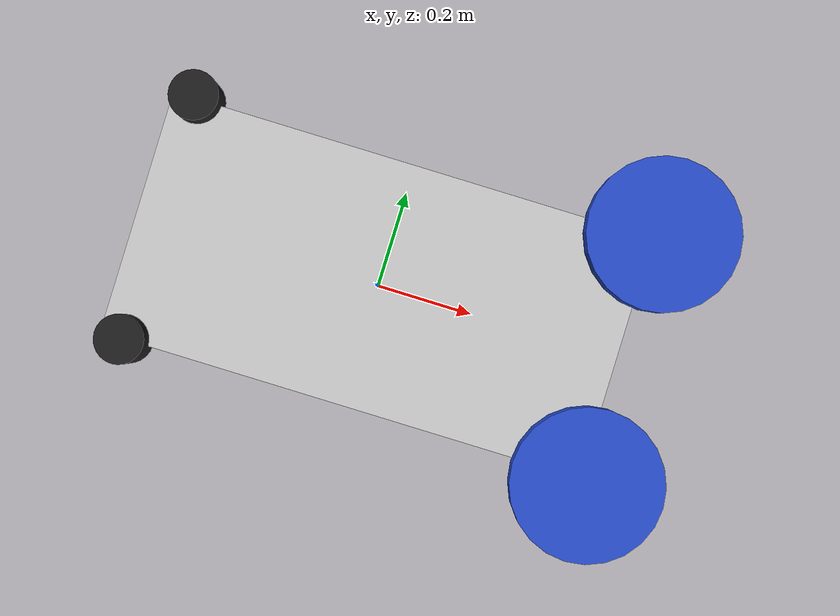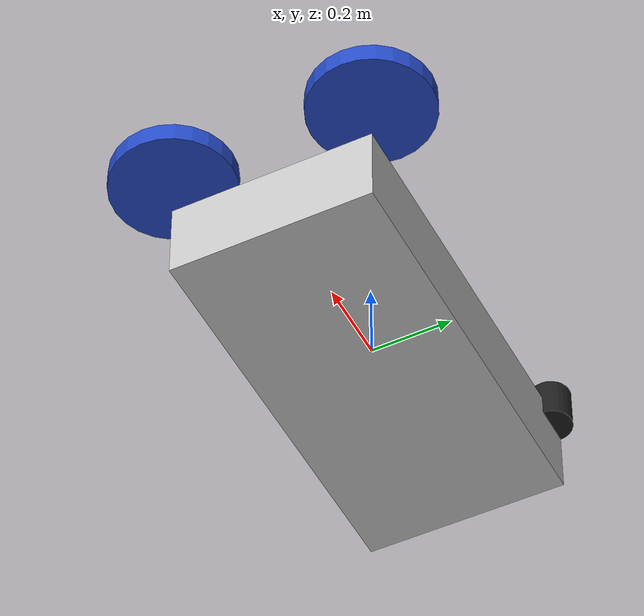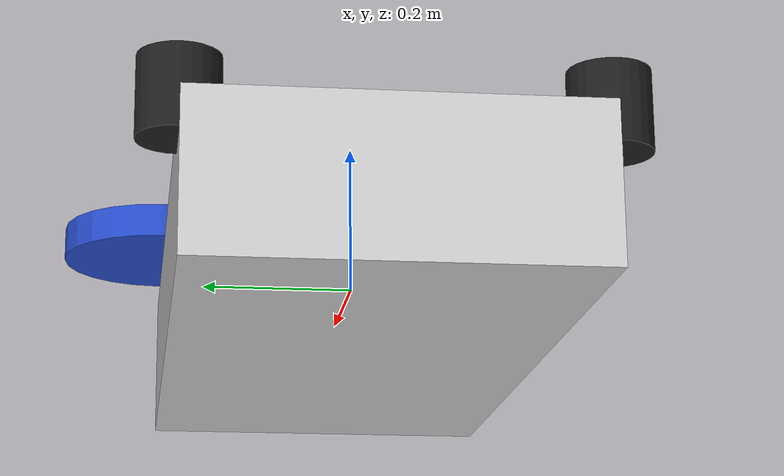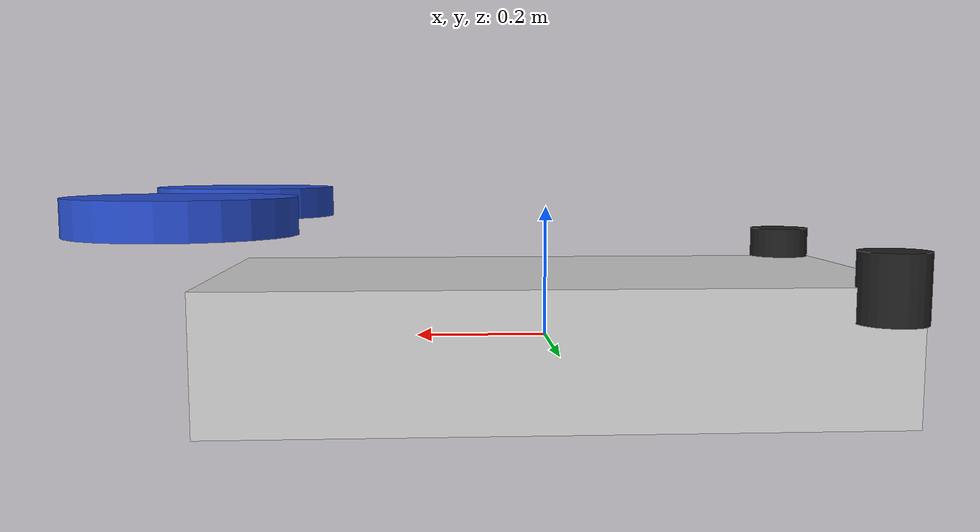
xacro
<?xml version="1.0"?>
<robot xmlns:xacro="http://www.ros.org/wiki/xacro" name="amr_robot">

  <!-- Robot Body -->
  <link name="base_link">
    <visual>
      <geometry>
        <box size="1.0 0.5 0.2"/>
      </geometry>
      <material name="light_gray"/>
    </visual>
    <collision>
      <geometry>
        <box size="1.0 0.5 0.2"/>
      </geometry>
    </collision>
    <inertial>
      <mass value="5.0"/>
      <inertia  ixx="0.25" ixy="0" ixz="0" iyy="0.25" iyz="0" izz="0.25"/>
    </inertial>
  </link>

  <!-- Differential Drive Wheels -->
  <link name="left_wheel">
    <visual>
      <geometry>
        <cylinder radius="0.05" length="0.1"/>
      </geometry>
      <material name="black"/>
    </visual>
    <collision>
      <geometry>
        <cylinder radius="0.05" length="0.1"/>
      </geometry>
    </collision>
    <inertial>
      <mass value="0.5"/>
      <inertia  ixx="0.01" ixy="0" ixz="0" iyy="0.01" iyz="0" izz="0.01"/>
    </inertial>
  </link>

  <link name="right_wheel">
    <visual>
      <geometry>
        <cylinder radius="0.05" length="0.1"/>
      </geometry>
      <material name="black"/>
    </visual>
    <collision>
      <geometry>
        <cylinder radius="0.05" length="0.1"/>
      </geometry>
    </collision>
    <inertial>
      <mass value="0.5"/>
      <inertia  ixx="0.01" ixy="0" ixz="0" iyy="0.01" iyz="0" izz="0.01"/>
    </inertial>
  </link>

  <!-- LIDAR sensors -->
  <link name="lidar_left">
    <visual>
      <geometry>
        <cylinder radius="0.15" length="0.05"/>
      </geometry>
      <material name="blue"/>
    </visual>
  </link>

  <link name="lidar_right">
    <visual>
      <geometry>
        <cylinder radius="0.15" length="0.05"/>
      </geometry>
      <material name="blue"/>
    </visual>
  </link>

  <!-- Joint Definitions -->
  <joint name="left_wheel_joint" type="revolute">
    <parent link="base_link"/>
    <child link="left_wheel"/>
    <origin xyz="-0.45 0.25 0.1" rpy="0 0 0"/>
    <axis xyz="0 0 1"/>
    <limit effort="50.0" velocity="10.0"/>
  </joint>

  <joint name="right_wheel_joint" type="revolute">
    <parent link="base_link"/>
    <child link="right_wheel"/>
    <origin xyz="-0.45 -0.25 0.1" rpy="0 0 0"/>
    <axis xyz="0 0 1"/>
    <limit effort="50.0" velocity="10.0"/>
  </joint>

  <joint name="lidar_left_joint" type="fixed">
    <parent link="base_link"/>
    <child link="lidar_left"/>
    <origin xyz="0.5 0.25 0.2" rpy="0 0 0"/>
  </joint>

  <joint name="lidar_right_joint" type="fixed">
    <parent link="base_link"/>
    <child link="lidar_right"/>
    <origin xyz="0.5 -0.25 0.2" rpy="0 0 0"/>
  </joint>

</robot>
